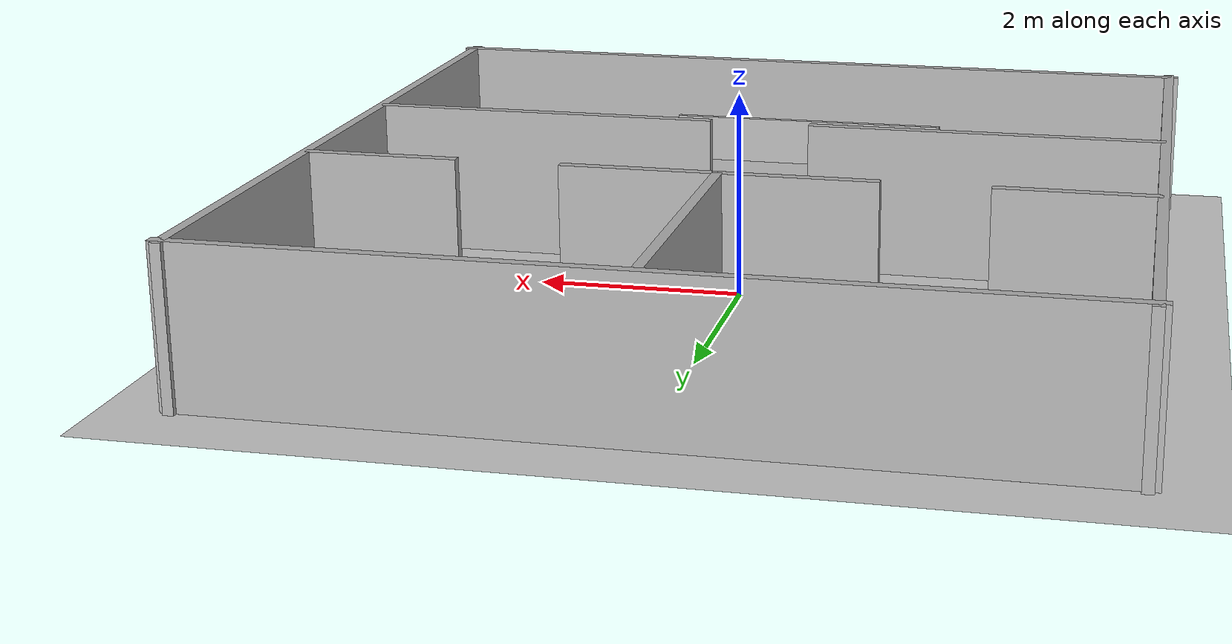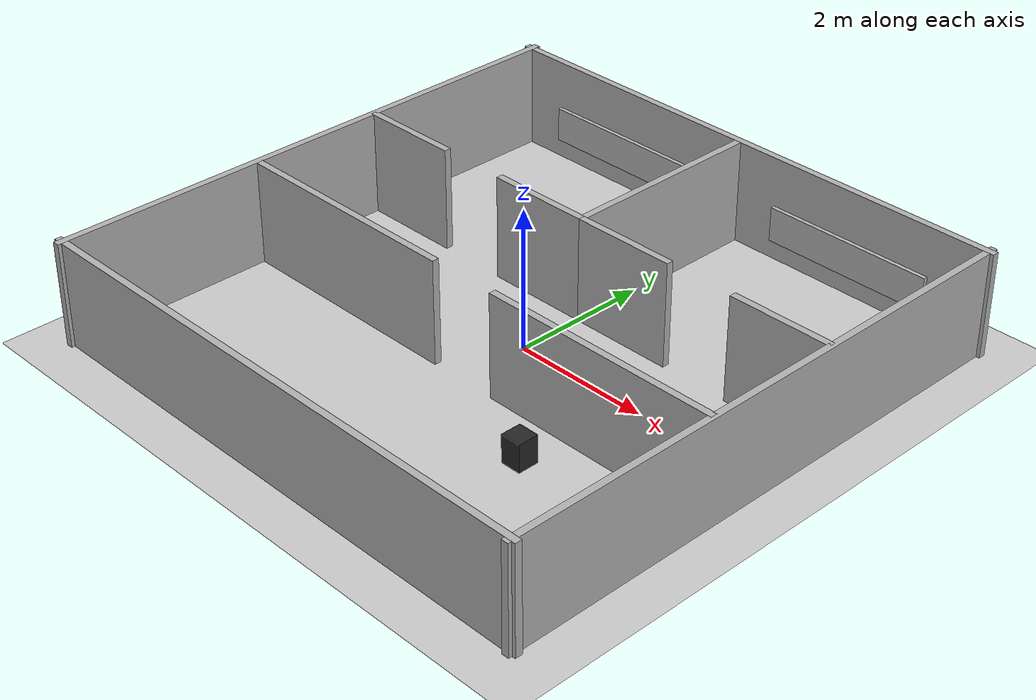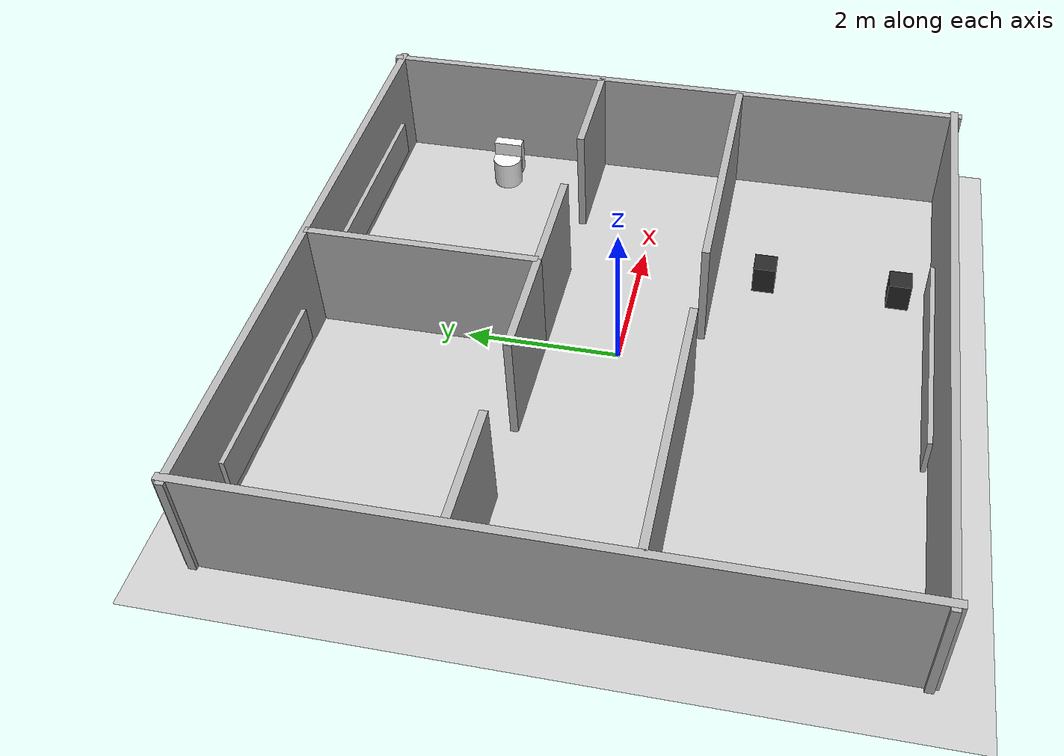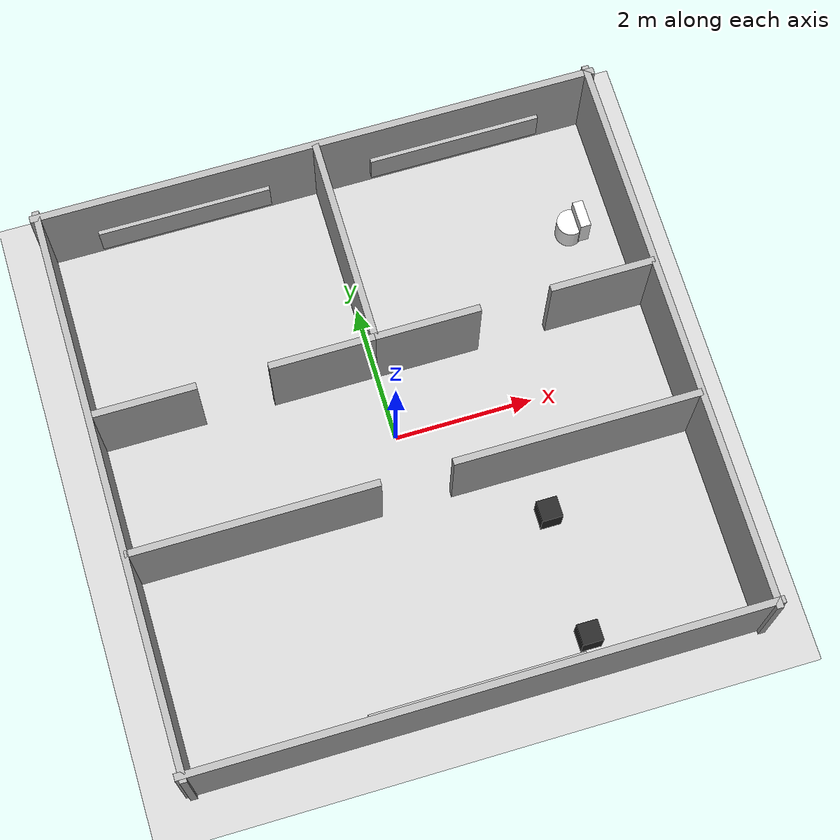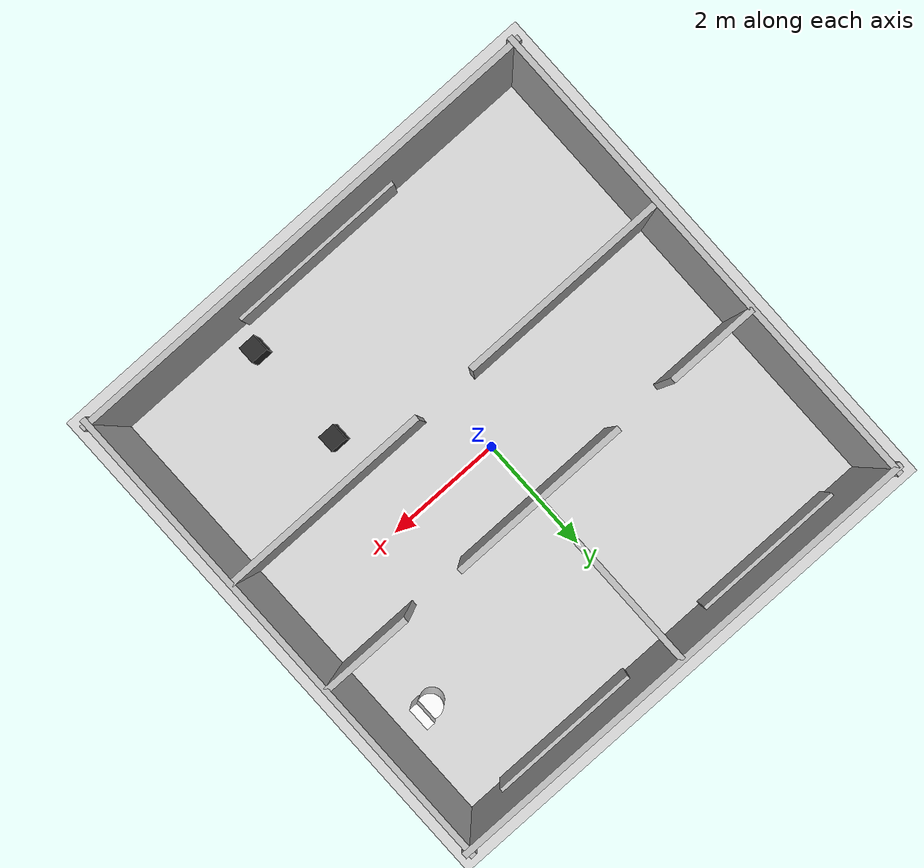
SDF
<sdf version="1.6">
 <world name="office_building">
  <include><uri>model://sun</uri></include>
  <include><uri>model://ground_plane</uri></include>
  <scene><ambient>0.7 0.7 0.7 1</ambient><background>0.8 0.8 0.8 1</background><shadows>false</shadows></scene>
  <physics type="ode">
   <real_time_update_rate>1000.0</real_time_update_rate>
   <max_step_size>0.001</max_step_size>
  </physics>
  <model name="walls">
   <static>true</static>
   <link name="wall_north">
    <pose>0 4 0.75 0 0 0</pose>
    <collision name="c"><geometry><box><size>8.2 0.1 1.5</size></box></geometry></collision>
    <visual name="v">
     <geometry><box><size>8.2 0.1 1.5</size></box></geometry>
     <material><ambient>0.7 0.7 0.7 1</ambient><diffuse>0.7 0.7 0.7 1</diffuse></material>
    </visual>
   </link>
   <link name="wall_south">
    <pose>0 -4 0.75 0 0 0</pose>
    <collision name="c"><geometry><box><size>8.2 0.1 1.5</size></box></geometry></collision>
    <visual name="v">
     <geometry><box><size>8.2 0.1 1.5</size></box></geometry>
     <material><ambient>0.7 0.7 0.7 1</ambient><diffuse>0.7 0.7 0.7 1</diffuse></material>
    </visual>
   </link>
   <link name="wall_east">
    <pose>4 0 0.75 0 0 0</pose>
    <collision name="c"><geometry><box><size>0.1 8.2 1.5</size></box></geometry></collision>
    <visual name="v">
     <geometry><box><size>0.1 8.2 1.5</size></box></geometry>
     <material><ambient>0.7 0.7 0.7 1</ambient><diffuse>0.7 0.7 0.7 1</diffuse></material>
    </visual>
   </link>
   <link name="wall_west">
    <pose>-4 0 0.75 0 0 0</pose>
    <collision name="c"><geometry><box><size>0.1 8.2 1.5</size></box></geometry></collision>
    <visual name="v">
     <geometry><box><size>0.1 8.2 1.5</size></box></geometry>
     <material><ambient>0.7 0.7 0.7 1</ambient><diffuse>0.7 0.7 0.7 1</diffuse></material>
    </visual>
   </link>
   <link name="wall_div_top">
    <pose>0 2.5 0.75 0 0 0</pose>
    <collision name="c"><geometry><box><size>0.1 3.0 1.5</size></box></geometry></collision>
    <visual name="v">
     <geometry><box><size>0.1 3.0 1.5</size></box></geometry>
     <material><ambient>0.7 0.7 0.7 1</ambient><diffuse>0.7 0.7 0.7 1</diffuse></material>
    </visual>
   </link>
   <link name="wall_kitchen_a">
    <pose>-3.25 1 0.75 0 0 0</pose>
    <collision name="c"><geometry><box><size>1.5 0.1 1.5</size></box></geometry></collision>
    <visual name="v">
     <geometry><box><size>1.5 0.1 1.5</size></box></geometry>
     <material><ambient>0.7 0.7 0.7 1</ambient><diffuse>0.7 0.7 0.7 1</diffuse></material>
    </visual>
   </link>
   <link name="wall_kitchen_b">
    <pose>-0.75 1 0.75 0 0 0</pose>
    <collision name="c"><geometry><box><size>1.5 0.1 1.5</size></box></geometry></collision>
    <visual name="v">
     <geometry><box><size>1.5 0.1 1.5</size></box></geometry>
     <material><ambient>0.7 0.7 0.7 1</ambient><diffuse>0.7 0.7 0.7 1</diffuse></material>
    </visual>
   </link>
   <link name="wall_toilet_a">
    <pose>0.75 1 0.75 0 0 0</pose>
    <collision name="c"><geometry><box><size>1.5 0.1 1.5</size></box></geometry></collision>
    <visual name="v">
     <geometry><box><size>1.5 0.1 1.5</size></box></geometry>
     <material><ambient>0.7 0.7 0.7 1</ambient><diffuse>0.7 0.7 0.7 1</diffuse></material>
    </visual>
   </link>
   <link name="wall_toilet_b">
    <pose>3.25 1 0.75 0 0 0</pose>
    <collision name="c"><geometry><box><size>1.5 0.1 1.5</size></box></geometry></collision>
    <visual name="v">
     <geometry><box><size>1.5 0.1 1.5</size></box></geometry>
     <material><ambient>0.7 0.7 0.7 1</ambient><diffuse>0.7 0.7 0.7 1</diffuse></material>
    </visual>
   </link>
   <link name="wall_office_a">
    <pose>-2.25 -1 0.75 0 0 0</pose>
    <collision name="c"><geometry><box><size>3.5 0.1 1.5</size></box></geometry></collision>
    <visual name="v">
     <geometry><box><size>3.5 0.1 1.5</size></box></geometry>
     <material><ambient>0.7 0.7 0.7 1</ambient><diffuse>0.7 0.7 0.7 1</diffuse></material>
    </visual>
   </link>
   <link name="wall_office_b">
    <pose>2.25 -1 0.75 0 0 0</pose>
    <collision name="c"><geometry><box><size>3.5 0.1 1.5</size></box></geometry></collision>
    <visual name="v">
     <geometry><box><size>3.5 0.1 1.5</size></box></geometry>
     <material><ambient>0.7 0.7 0.7 1</ambient><diffuse>0.7 0.7 0.7 1</diffuse></material>
    </visual>
   </link>
  </model>
  <model name="sign_kitchen">
   <static>true</static>
   <link name="panel">
    <pose>-2.0 3.84 0.6 0 0 0</pose>
    <visual name="v">
     <geometry><box><size>2.5 0.06 0.5</size></box></geometry>
     <material>
      <script>
       <uri>model://office_signs/materials/scripts</uri>
       <uri>model://office_signs/materials/textures</uri>
       <name>OfficeSigns/Kitchen</name>
      </script>
     </material>
    </visual>
   </link>
  </model>
  <model name="sign_toilet">
   <static>true</static>
   <link name="panel">
    <pose>2.0 3.84 0.6 0 0 0</pose>
    <visual name="v">
     <geometry><box><size>2.5 0.06 0.5</size></box></geometry>
     <material>
      <script>
       <uri>model://office_signs/materials/scripts</uri>
       <uri>model://office_signs/materials/textures</uri>
       <name>OfficeSigns/Toilet</name>
      </script>
     </material>
    </visual>
   </link>
  </model>
  <model name="sign_office">
   <static>true</static>
   <link name="panel">
    <pose>0.0 -3.84 0.6 0 0 0</pose>
    <visual name="v">
     <geometry><box><size>3.0 0.06 0.5</size></box></geometry>
     <material>
      <script>
       <uri>model://office_signs/materials/scripts</uri>
       <uri>model://office_signs/materials/textures</uri>
       <name>OfficeSigns/Office</name>
      </script>
     </material>
    </visual>
   </link>
  </model>
  <model name="toilet_bowl">
   <static>true</static>
   <link name="bowl">
    <pose>3.3 2.3 0.2 0 0 0</pose>
    <collision name="c">
     <geometry><cylinder><radius>0.2</radius><length>0.4</length></cylinder></geometry>
    </collision>
    <visual name="v">
     <geometry><cylinder><radius>0.2</radius><length>0.4</length></cylinder></geometry>
     <material><ambient>0.95 0.95 0.95 1</ambient><diffuse>0.95 0.95 0.95 1</diffuse></material>
    </visual>
   </link>
   <link name="tank">
    <pose>3.45 2.3 0.35 0 0 0</pose>
    <collision name="c"><geometry><box><size>0.15 0.4 0.5</size></box></geometry></collision>
    <visual name="v">
     <geometry><box><size>0.15 0.4 0.5</size></box></geometry>
     <material><ambient>0.95 0.95 0.95 1</ambient><diffuse>0.95 0.95 0.95 1</diffuse></material>
    </visual>
   </link>
  </model>
  <model name="office_chair_1">
   <static>true</static>
   <link name="l">
    <pose>1.7 -1.7 0.2 0 0 0</pose>
    <collision name="c"><geometry><box><size>0.3 0.3 0.4</size></box></geometry></collision>
    <visual name="v">
     <geometry><box><size>0.3 0.3 0.4</size></box></geometry>
     <material><ambient>0.15 0.15 0.15 1</ambient><diffuse>0.15 0.15 0.15 1</diffuse></material>
    </visual>
   </link>
  </model>
  <model name="office_chair_2">
   <static>true</static>
   <link name="l">
    <pose>1.7 -3.5 0.2 0 0 0</pose>
    <collision name="c"><geometry><box><size>0.3 0.3 0.4</size></box></geometry></collision>
    <visual name="v">
     <geometry><box><size>0.3 0.3 0.4</size></box></geometry>
     <material><ambient>0.15 0.15 0.15 1</ambient><diffuse>0.15 0.15 0.15 1</diffuse></material>
    </visual>
   </link>
  </model>
 </world>
</sdf>
